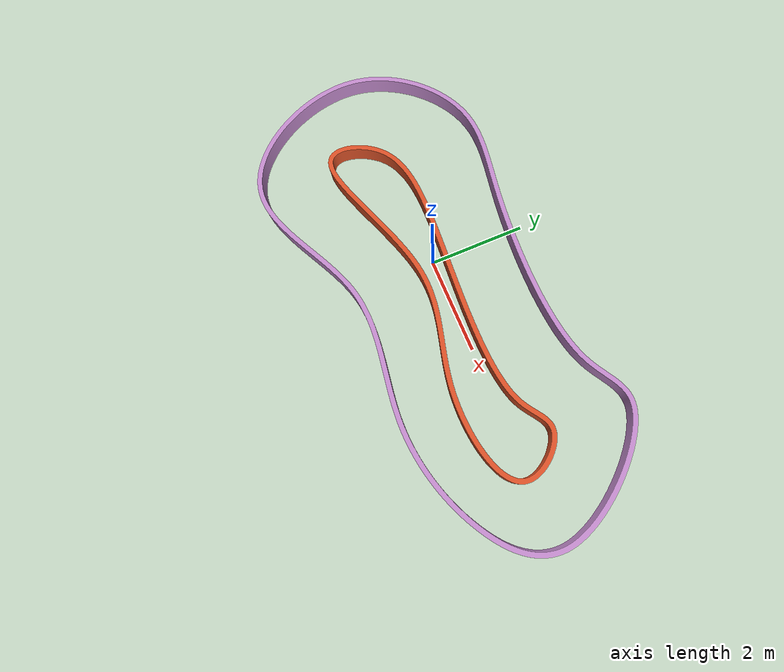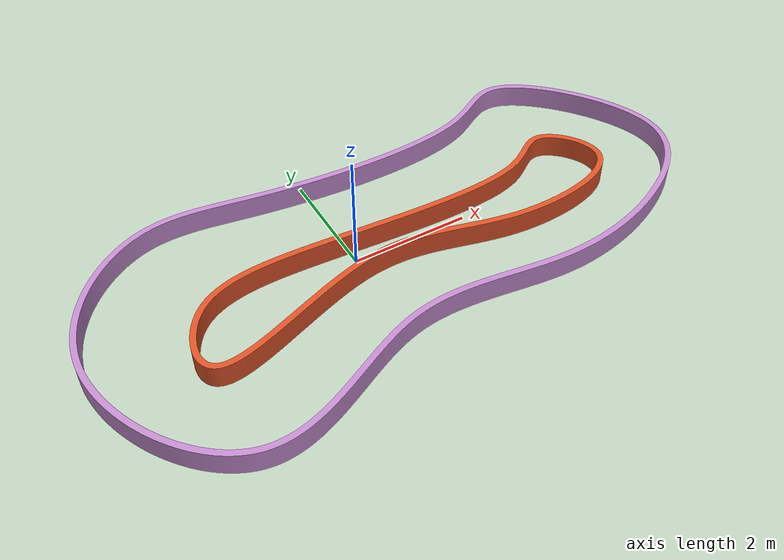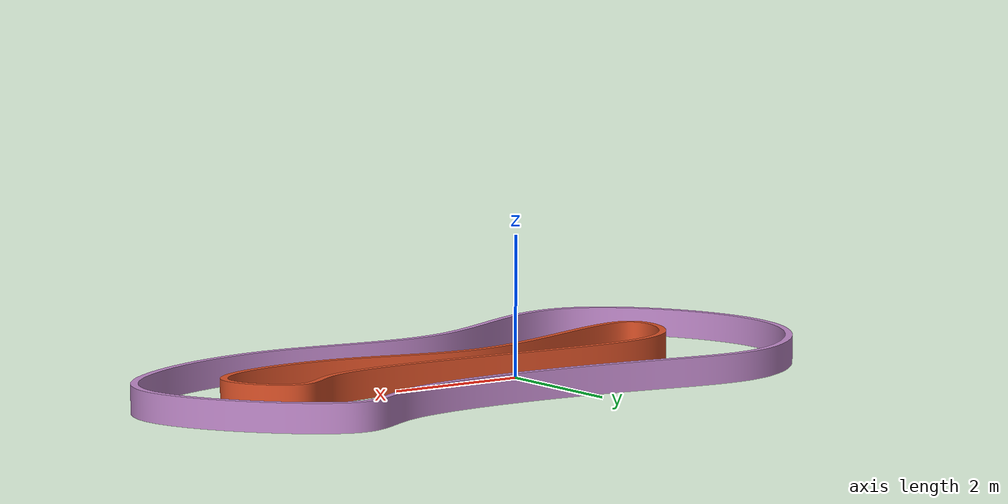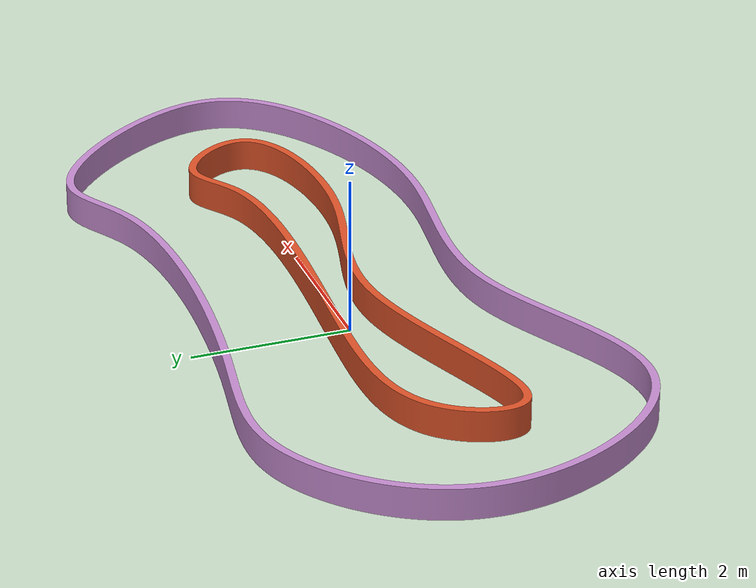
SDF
<?xml version='1.0'?>

<sdf version='1.4'>
  <model name="porto_track">
    <static>true</static>
    <link name="link">
      <collision name="collision">
        <geometry>
          <mesh>
            <uri>model://racetrack_smooth/meshes/race_track.dae</uri>
          </mesh>
        </geometry>
      </collision>
      <visual name="visual">
        <geometry>
          <mesh>
            <uri>model://racetrack_smooth/meshes/race_track.dae</uri>
          </mesh>
        </geometry>
      </visual>
    </link>

  </model>
</sdf>
